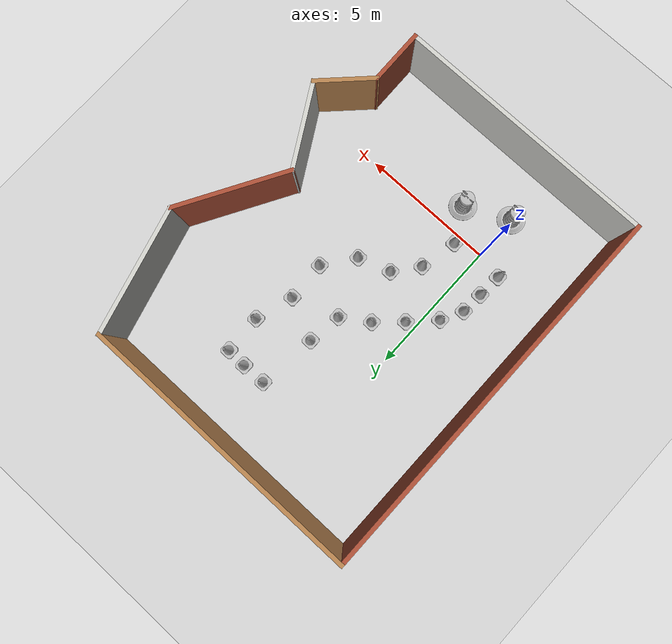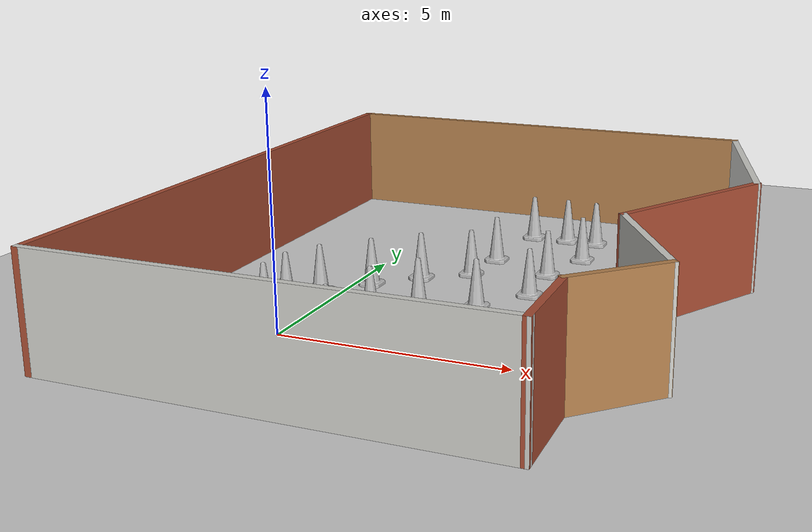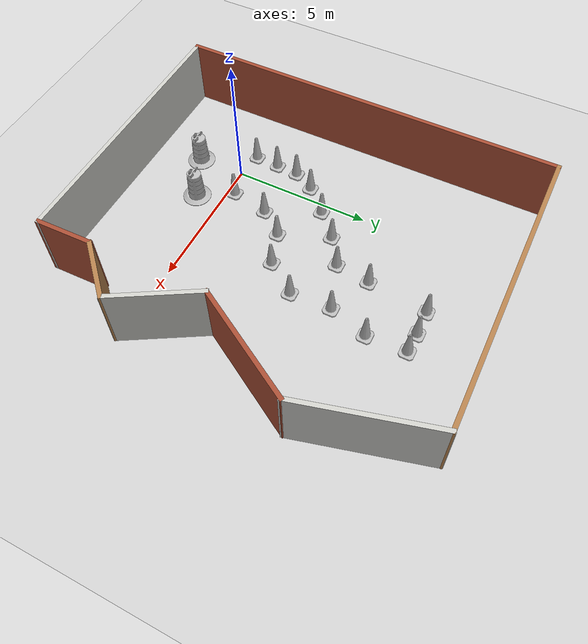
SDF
<sdf version="1.7">
 <world name="default">
  <light name="sun" type="directional">
   <pose>0 0 10 0 -0 0</pose>
   <diffuse>0.8 0.8 0.8 1</diffuse>
   <specular>0.2 0.2 0.2 1</specular>
   <attenuation>
    <range>1000</range>
    <constant>0.9</constant>
    <linear>0.01</linear>
    <quadratic>0.001</quadratic>
   </attenuation>
   <direction>-0.5 0.1 -0.9</direction>
   <spot><inner_angle>0</inner_angle><outer_angle>0</outer_angle><falloff>0</falloff></spot>
  </light>
  <model name="ground_plane">
   <static>1</static>
   <link name="link">
    <collision name="collision">
     <geometry><plane><normal>0 0 1</normal><size>100 100</size></plane></geometry>
     <surface>
      <contact><collide_bitmask>65535</collide_bitmask></contact>
      <friction><ode><mu>100</mu><mu2>50</mu2></ode></friction>
     </surface>
    </collision>
    <visual name="visual">
     <cast_shadows>0</cast_shadows>
     <geometry><plane><normal>0 0 1</normal><size>100 100</size></plane></geometry>
     <material>
      <script><uri>file://media/materials/scripts/gazebo.material</uri><name>Gazebo/Grey</name></script>
     </material>
    </visual>
   </link>
  </model>
  <gravity>0 0 -9.8</gravity>
  <magnetic_field>6e-06 2.3e-05 -4.2e-05</magnetic_field>
  <atmosphere type="adiabatic"/>
  <physics type="ode">
   <max_step_size>0.001</max_step_size>
   <real_time_factor>1</real_time_factor>
   <real_time_update_rate>1000</real_time_update_rate>
  </physics>
  <scene><ambient>0.4 0.4 0.4 1</ambient><background>0.7 0.7 0.7 1</background><shadows>1</shadows></scene>
  <audio><device>default</device></audio>
  <spherical_coordinates>
   <surface_model>EARTH_WGS84</surface_model>
   <latitude_deg>0</latitude_deg>
   <longitude_deg>0</longitude_deg>
   <elevation>0</elevation>
   <heading_deg>0</heading_deg>
  </spherical_coordinates>
  <model name="Construction Cone">
   <link name="link">
    <collision name="collision">
     <geometry>
      <mesh><scale>10 10 10</scale><uri>model://construction_cone/meshes/construction_cone.dae</uri></mesh>
     </geometry>
    </collision>
    <visual name="visual">
     <geometry>
      <mesh><scale>10 10 10</scale><uri>model://construction_cone/meshes/construction_cone.dae</uri></mesh>
     </geometry>
    </visual>
    <inertial>
     <inertia><ixx>1</ixx><ixy>0</ixy><ixz>0</ixz><iyy>1</iyy><iyz>0</iyz><izz>1</izz></inertia>
     <mass>1</mass>
    </inertial>
   </link>
   <pose>2.62828 8.40663 -0 0 -0 0</pose>
  </model>
  <model name="Construction Cone_clone">
   <link name="link">
    <collision name="collision">
     <geometry>
      <mesh><scale>10 10 10</scale><uri>model://construction_cone/meshes/construction_cone.dae</uri></mesh>
     </geometry>
    </collision>
    <visual name="visual">
     <geometry>
      <mesh><scale>10 10 10</scale><uri>model://construction_cone/meshes/construction_cone.dae</uri></mesh>
     </geometry>
    </visual>
    <inertial>
     <inertia><ixx>1</ixx><ixy>0</ixy><ixz>0</ixz><iyy>1</iyy><iyz>0</iyz><izz>1</izz></inertia>
     <mass>1</mass>
    </inertial>
   </link>
   <pose>-0.968174 0.171458 -0 0 -0 0</pose>
  </model>
  <model name="Construction Cone_clone_0">
   <link name="link">
    <collision name="collision">
     <geometry>
      <mesh><scale>10 10 10</scale><uri>model://construction_cone/meshes/construction_cone.dae</uri></mesh>
     </geometry>
    </collision>
    <visual name="visual">
     <geometry>
      <mesh><scale>10 10 10</scale><uri>model://construction_cone/meshes/construction_cone.dae</uri></mesh>
     </geometry>
    </visual>
    <inertial>
     <inertia><ixx>1</ixx><ixy>0</ixy><ixz>0</ixz><iyy>1</iyy><iyz>0</iyz><izz>1</izz></inertia>
     <mass>1</mass>
    </inertial>
   </link>
   <pose>-0.92086 1.06273 -0 0 -0 0</pose>
  </model>
  <model name="Construction Cone_clone_1">
   <link name="link">
    <collision name="collision">
     <geometry>
      <mesh><scale>10 10 10</scale><uri>model://construction_cone/meshes/construction_cone.dae</uri></mesh>
     </geometry>
    </collision>
    <visual name="visual">
     <geometry>
      <mesh><scale>10 10 10</scale><uri>model://construction_cone/meshes/construction_cone.dae</uri></mesh>
     </geometry>
    </visual>
    <inertial>
     <inertia><ixx>1</ixx><ixy>0</ixy><ixz>0</ixz><iyy>1</iyy><iyz>0</iyz><izz>1</izz></inertia>
     <mass>1</mass>
    </inertial>
   </link>
   <pose>-0.463275 2.66929 -4e-06 4e-06 -1e-06 0</pose>
  </model>
  <model name="Construction Cone_clone_2">
   <link name="link">
    <collision name="collision">
     <geometry>
      <mesh><scale>10 10 10</scale><uri>model://construction_cone/meshes/construction_cone.dae</uri></mesh>
     </geometry>
    </collision>
    <visual name="visual">
     <geometry>
      <mesh><scale>10 10 10</scale><uri>model://construction_cone/meshes/construction_cone.dae</uri></mesh>
     </geometry>
    </visual>
    <inertial>
     <inertia><ixx>1</ixx><ixy>0</ixy><ixz>0</ixz><iyy>1</iyy><iyz>0</iyz><izz>1</izz></inertia>
     <mass>1</mass>
    </inertial>
   </link>
   <pose>0.381269 3.5273 -4e-06 4e-06 -1e-06 0</pose>
  </model>
  <model name="Construction Cone_clone_3">
   <link name="link">
    <collision name="collision">
     <geometry>
      <mesh><scale>10 10 10</scale><uri>model://construction_cone/meshes/construction_cone.dae</uri></mesh>
     </geometry>
    </collision>
    <visual name="visual">
     <geometry>
      <mesh><scale>10 10 10</scale><uri>model://construction_cone/meshes/construction_cone.dae</uri></mesh>
     </geometry>
    </visual>
    <inertial>
     <inertia><ixx>1</ixx><ixy>0</ixy><ixz>0</ixz><iyy>1</iyy><iyz>0</iyz><izz>1</izz></inertia>
     <mass>1</mass>
    </inertial>
   </link>
   <pose>1.25889 1.67946 -0 0 -0 0</pose>
  </model>
  <model name="Construction Cone_clone_4">
   <link name="link">
    <collision name="collision">
     <geometry>
      <mesh><scale>10 10 10</scale><uri>model://construction_cone/meshes/construction_cone.dae</uri></mesh>
     </geometry>
    </collision>
    <visual name="visual">
     <geometry>
      <mesh><scale>10 10 10</scale><uri>model://construction_cone/meshes/construction_cone.dae</uri></mesh>
     </geometry>
    </visual>
    <inertial>
     <inertia><ixx>1</ixx><ixy>0</ixy><ixz>0</ixz><iyy>1</iyy><iyz>0</iyz><izz>1</izz></inertia>
     <mass>1</mass>
    </inertial>
   </link>
   <pose>1.2495 4.33933 -4e-06 4e-06 -1e-06 0</pose>
  </model>
  <model name="Construction Cone_clone_5">
   <link name="link">
    <collision name="collision">
     <geometry>
      <mesh><scale>10 10 10</scale><uri>model://construction_cone/meshes/construction_cone.dae</uri></mesh>
     </geometry>
    </collision>
    <visual name="visual">
     <geometry>
      <mesh><scale>10 10 10</scale><uri>model://construction_cone/meshes/construction_cone.dae</uri></mesh>
     </geometry>
    </visual>
    <inertial>
     <inertia><ixx>1</ixx><ixy>0</ixy><ixz>0</ixz><iyy>1</iyy><iyz>0</iyz><izz>1</izz></inertia>
     <mass>1</mass>
    </inertial>
   </link>
   <pose>1.95966 2.56983 -0 0 -0 0</pose>
  </model>
  <model name="Construction Cone_clone_6">
   <link name="link">
    <collision name="collision">
     <geometry>
      <mesh><scale>10 10 10</scale><uri>model://construction_cone/meshes/construction_cone.dae</uri></mesh>
     </geometry>
    </collision>
    <visual name="visual">
     <geometry>
      <mesh><scale>10 10 10</scale><uri>model://construction_cone/meshes/construction_cone.dae</uri></mesh>
     </geometry>
    </visual>
    <inertial>
     <inertia><ixx>1</ixx><ixy>0</ixy><ixz>0</ixz><iyy>1</iyy><iyz>0</iyz><izz>1</izz></inertia>
     <mass>1</mass>
    </inertial>
   </link>
   <pose>3.1352 2.96601 -4e-06 4e-06 -1e-06 0</pose>
  </model>
  <model name="Construction Cone_clone_7">
   <link name="link">
    <collision name="collision">
     <geometry>
      <mesh><scale>10 10 10</scale><uri>model://construction_cone/meshes/construction_cone.dae</uri></mesh>
     </geometry>
    </collision>
    <visual name="visual">
     <geometry>
      <mesh><scale>10 10 10</scale><uri>model://construction_cone/meshes/construction_cone.dae</uri></mesh>
     </geometry>
    </visual>
    <inertial>
     <inertia><ixx>1</ixx><ixy>0</ixy><ixz>0</ixz><iyy>1</iyy><iyz>0</iyz><izz>1</izz></inertia>
     <mass>1</mass>
    </inertial>
   </link>
   <pose>4.25444 8.39397 -4e-06 4e-06 -1e-06 0</pose>
  </model>
  <model name="Construction Cone_clone_8">
   <link name="link">
    <collision name="collision">
     <geometry>
      <mesh><scale>10 10 10</scale><uri>model://construction_cone/meshes/construction_cone.dae</uri></mesh>
     </geometry>
    </collision>
    <visual name="visual">
     <geometry>
      <mesh><scale>10 10 10</scale><uri>model://construction_cone/meshes/construction_cone.dae</uri></mesh>
     </geometry>
    </visual>
    <inertial>
     <inertia><ixx>1</ixx><ixy>0</ixy><ixz>0</ixz><iyy>1</iyy><iyz>0</iyz><izz>1</izz></inertia>
     <mass>1</mass>
    </inertial>
   </link>
   <pose>3.89162 5.56744 -6e-06 -4e-06 0 0</pose>
  </model>
  <model name="Construction Cone_clone_9">
   <link name="link">
    <collision name="collision">
     <geometry>
      <mesh><scale>10 10 10</scale><uri>model://construction_cone/meshes/construction_cone.dae</uri></mesh>
     </geometry>
    </collision>
    <visual name="visual">
     <geometry>
      <mesh><scale>10 10 10</scale><uri>model://construction_cone/meshes/construction_cone.dae</uri></mesh>
     </geometry>
    </visual>
    <inertial>
     <inertia><ixx>1</ixx><ixy>0</ixy><ixz>0</ixz><iyy>1</iyy><iyz>0</iyz><izz>1</izz></inertia>
     <mass>1</mass>
    </inertial>
   </link>
   <pose>4.31814 6.96748 -0 0 -0 0</pose>
  </model>
  <model name="Construction Cone_clone_10">
   <link name="link">
    <collision name="collision">
     <geometry>
      <mesh><scale>10 10 10</scale><uri>model://construction_cone/meshes/construction_cone.dae</uri></mesh>
     </geometry>
    </collision>
    <visual name="visual">
     <geometry>
      <mesh><scale>10 10 10</scale><uri>model://construction_cone/meshes/construction_cone.dae</uri></mesh>
     </geometry>
    </visual>
    <inertial>
     <inertia><ixx>1</ixx><ixy>0</ixy><ixz>0</ixz><iyy>1</iyy><iyz>0</iyz><izz>1</izz></inertia>
     <mass>1</mass>
    </inertial>
   </link>
   <pose>0.96499 0.29434 -0 0 0 -0.004715</pose>
  </model>
  <model name="Construction Cone_clone_11">
   <link name="link">
    <collision name="collision">
     <geometry>
      <mesh><scale>10 10 10</scale><uri>model://construction_cone/meshes/construction_cone.dae</uri></mesh>
     </geometry>
    </collision>
    <visual name="visual">
     <geometry>
      <mesh><scale>10 10 10</scale><uri>model://construction_cone/meshes/construction_cone.dae</uri></mesh>
     </geometry>
    </visual>
    <inertial>
     <inertia><ixx>1</ixx><ixy>0</ixy><ixz>0</ixz><iyy>1</iyy><iyz>0</iyz><izz>1</izz></inertia>
     <mass>1</mass>
    </inertial>
   </link>
   <pose>-0.873034 1.891 -0 0 0 -0.003831</pose>
  </model>
  <model name="Construction Cone_clone_12">
   <link name="link">
    <collision name="collision">
     <geometry>
      <mesh><scale>10 10 10</scale><uri>model://construction_cone/meshes/construction_cone.dae</uri></mesh>
     </geometry>
    </collision>
    <visual name="visual">
     <geometry>
      <mesh><scale>10 10 10</scale><uri>model://construction_cone/meshes/construction_cone.dae</uri></mesh>
     </geometry>
    </visual>
    <inertial>
     <inertia><ixx>1</ixx><ixy>0</ixy><ixz>0</ixz><iyy>1</iyy><iyz>0</iyz><izz>1</izz></inertia>
     <mass>1</mass>
    </inertial>
   </link>
   <pose>2.22933 4.9886 -0 0 -0 -0.000415</pose>
  </model>
  <model name="Construction Cone_clone_13">
   <link name="link">
    <collision name="collision">
     <geometry>
      <mesh><scale>10 10 10</scale><uri>model://construction_cone/meshes/construction_cone.dae</uri></mesh>
     </geometry>
    </collision>
    <visual name="visual">
     <geometry>
      <mesh><scale>10 10 10</scale><uri>model://construction_cone/meshes/construction_cone.dae</uri></mesh>
     </geometry>
    </visual>
    <inertial>
     <inertia><ixx>1</ixx><ixy>0</ixy><ixz>0</ixz><iyy>1</iyy><iyz>0</iyz><izz>1</izz></inertia>
     <mass>1</mass>
    </inertial>
   </link>
   <pose>2.39463 6.24563 -0 1e-06 -0 0</pose>
  </model>
  <model name="Construction Cone_clone_14">
   <link name="link">
    <collision name="collision">
     <geometry>
      <mesh><scale>10 10 10</scale><uri>model://construction_cone/meshes/construction_cone.dae</uri></mesh>
     </geometry>
    </collision>
    <visual name="visual">
     <geometry>
      <mesh><scale>10 10 10</scale><uri>model://construction_cone/meshes/construction_cone.dae</uri></mesh>
     </geometry>
    </visual>
    <inertial>
     <inertia><ixx>1</ixx><ixy>0</ixy><ixz>0</ixz><iyy>1</iyy><iyz>0</iyz><izz>1</izz></inertia>
     <mass>1</mass>
    </inertial>
   </link>
   <pose>3.95273 4.08275 -0 2e-06 -2e-06 0.00933</pose>
  </model>
  <model name="Construction Cone_0">
   <link name="link">
    <collision name="collision">
     <geometry>
      <mesh><scale>10 10 10</scale><uri>model://construction_cone/meshes/construction_cone.dae</uri></mesh>
     </geometry>
    </collision>
    <visual name="visual">
     <geometry>
      <mesh><scale>10 10 10</scale><uri>model://construction_cone/meshes/construction_cone.dae</uri></mesh>
     </geometry>
    </visual>
    <inertial>
     <inertia><ixx>1</ixx><ixy>0</ixy><ixz>0</ixz><iyy>1</iyy><iyz>0</iyz><izz>1</izz></inertia>
     <mass>1</mass>
    </inertial>
   </link>
   <pose>3.51384 8.42718 -5e-06 -4e-06 1e-06 0</pose>
  </model>
  <model name="Construction Barrel">
   <link name="link">
    <inertial>
     <pose>0 0 0.4 0 -0 0</pose>
     <mass>500</mass>
     <inertia><ixx>51.2096</ixx><iyy>51.2096</iyy><izz>25</izz><ixy>0</ixy><ixz>0</ixz><iyz>0</iyz></inertia>
    </inertial>
    <collision name="collision">
     <geometry><mesh><uri>model://construction_barrel/meshes/construction_barrel.dae</uri></mesh></geometry>
    </collision>
    <visual name="visual">
     <geometry><mesh><uri>model://construction_barrel/meshes/construction_barrel.dae</uri></mesh></geometry>
    </visual>
   </link>
   <pose>1.63007 -0.925838 -2e-06 -0 7e-06 -3.2e-05</pose>
  </model>
  <model name="Construction Barrel_0">
   <link name="link">
    <inertial>
     <pose>0 0 0.4 0 -0 0</pose>
     <mass>500</mass>
     <inertia><ixx>51.2096</ixx><iyy>51.2096</iyy><izz>25</izz><ixy>0</ixy><ixz>0</ixz><iyz>0</iyz></inertia>
    </inertial>
    <collision name="collision">
     <geometry><mesh><uri>model://construction_barrel/meshes/construction_barrel.dae</uri></mesh></geometry>
    </collision>
    <visual name="visual">
     <geometry><mesh><uri>model://construction_barrel/meshes/construction_barrel.dae</uri></mesh></geometry>
    </visual>
   </link>
   <pose>0.030867 -1.70764 -0 0 0 -5.1e-05</pose>
  </model>
  <model name="osticals_walls">
   <pose>2.65805 3.55552 0 0 -0 0</pose>
   <link name="Wall_2">
    <collision name="Wall_2_Collision">
     <geometry><box><size>14.25 0.15 2.5</size></box></geometry>
     <pose>0 0 1.25 0 -0 0</pose>
    </collision>
    <visual name="Wall_2_Visual">
     <pose>0 0 1.25 0 -0 0</pose>
     <geometry><box><size>14.25 0.15 2.5</size></box></geometry>
     <material>
      <script><uri>file://media/materials/scripts/gazebo.material</uri><name>Gazebo/Bricks</name></script>
      <ambient>1 1 1 1</ambient>
     </material>
     <meta><layer>0</layer></meta>
    </visual>
    <pose>-5.78401 -0.007579 0 0 -0 1.5708</pose>
   </link>
   <link name="Wall_3">
    <collision name="Wall_3_Collision">
     <geometry><box><size>10.5 0.15 2.5</size></box></geometry>
     <pose>0 0 1.25 0 -0 0</pose>
    </collision>
    <visual name="Wall_3_Visual">
     <pose>0 0 1.25 0 -0 0</pose>
     <geometry><box><size>10.5 0.15 2.5</size></box></geometry>
     <material>
      <script><uri>file://media/materials/scripts/gazebo.material</uri><name>Gazebo/Wood</name></script>
      <ambient>1 1 1 1</ambient>
     </material>
     <meta><layer>0</layer></meta>
    </visual>
    <pose>-0.609009 7.04242 0 0 -0 0</pose>
   </link>
   <link name="Wall_4">
    <collision name="Wall_4_Collision">
     <geometry><box><size>4.75 0.15 2.5</size></box></geometry>
     <pose>0 0 1.25 0 -0 0</pose>
    </collision>
    <visual name="Wall_4_Visual">
     <pose>0 0 1.25 0 -0 0</pose>
     <geometry><box><size>4.75 0.15 2.5</size></box></geometry>
     <material>
      <script><uri>file://media/materials/scripts/gazebo.material</uri><name>Gazebo/CeilingTiled</name></script>
      <ambient>1 1 1 1</ambient>
     </material>
     <meta><layer>0</layer></meta>
    </visual>
    <pose>5.16127 4.82079 0 0 -0 -1.309</pose>
   </link>
   <link name="Wall_5">
    <collision name="Wall_5_Collision">
     <geometry><box><size>4.25 0.15 2.5</size></box></geometry>
     <pose>0 0 1.25 0 -0 0</pose>
    </collision>
    <visual name="Wall_5_Visual">
     <pose>0 0 1.25 0 -0 0</pose>
     <geometry><box><size>4.25 0.15 2.5</size></box></geometry>
     <material>
      <script><uri>file://media/materials/scripts/gazebo.material</uri><name>Gazebo/Bricks</name></script>
      <ambient>1 1 1 1</ambient>
     </material>
     <meta><layer>0</layer></meta>
    </visual>
    <pose>4.73156 0.82381 0 0 -0 -2.0944</pose>
   </link>
   <link name="Wall_6">
    <collision name="Wall_6_Collision">
     <geometry><box><size>3.25 0.15 2.5</size></box></geometry>
     <pose>0 0 1.25 0 -0 0</pose>
    </collision>
    <visual name="Wall_6_Visual">
     <pose>0 0 1.25 0 -0 0</pose>
     <geometry><box><size>3.25 0.15 2.5</size></box></geometry>
     <material>
      <script><uri>file://media/materials/scripts/gazebo.material</uri><name>Gazebo/CeilingTiled</name></script>
      <ambient>1 1 1 1</ambient>
     </material>
     <meta><layer>0</layer></meta>
    </visual>
    <pose>4.48156 -2.29388 0 0 -0 -1.0472</pose>
   </link>
   <link name="Wall_7">
    <collision name="Wall_7_Collision">
     <geometry><box><size>2.25 0.15 2.5</size></box></geometry>
     <pose>0 0 1.25 0 -0 0</pose>
    </collision>
    <visual name="Wall_7_Visual">
     <pose>0 0 1.25 0 -0 0</pose>
     <geometry><box><size>2.25 0.15 2.5</size></box></geometry>
     <material>
      <script><uri>file://media/materials/scripts/gazebo.material</uri><name>Gazebo/Wood</name></script>
      <ambient>1 1 1 1</ambient>
     </material>
     <meta><layer>0</layer></meta>
    </visual>
    <pose>4.5141 -4.37868 0 0 -0 -2.35619</pose>
   </link>
   <link name="Wall_8">
    <collision name="Wall_8_Collision">
     <geometry><box><size>2.08694 0.15 2.5</size></box></geometry>
     <pose>0 0 1.25 0 -0 0</pose>
    </collision>
    <visual name="Wall_8_Visual">
     <pose>0 0 1.25 0 -0 0</pose>
     <geometry><box><size>2.08694 0.15 2.5</size></box></geometry>
     <material>
      <script><uri>file://media/materials/scripts/gazebo.material</uri><name>Gazebo/Bricks</name></script>
      <ambient>1 1 1 1</ambient>
     </material>
     <meta><layer>0</layer></meta>
    </visual>
    <pose>3.79381 -6.08936 0 0 -0 -1.54789</pose>
   </link>
   <link name="Wall_9">
    <collision name="Wall_9_Collision">
     <geometry><box><size>9.75 0.15 2.5</size></box></geometry>
     <pose>0 0 1.25 0 -0 0</pose>
    </collision>
    <visual name="Wall_9_Visual">
     <pose>0 0 1.25 0 -0 0</pose>
     <geometry><box><size>9.75 0.15 2.5</size></box></geometry>
     <material>
      <script><uri>file://media/materials/scripts/gazebo.material</uri><name>Gazebo/CeilingTiled</name></script>
      <ambient>1 1 1 1</ambient>
     </material>
     <meta><layer>0</layer></meta>
    </visual>
    <pose>-0.984009 -7.05758 0 0 -0 3.14159</pose>
   </link>
   <static>1</static>
  </model>
 </world>
</sdf>
